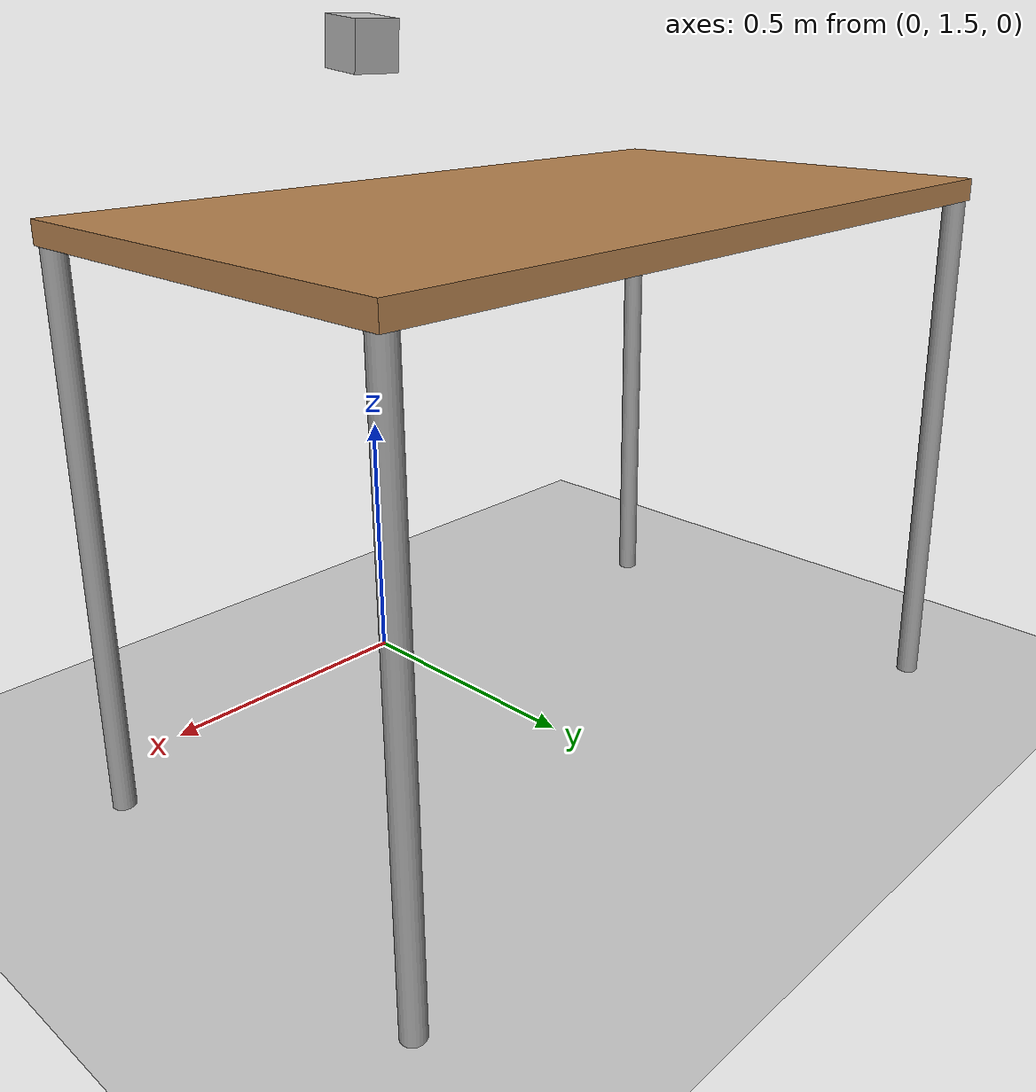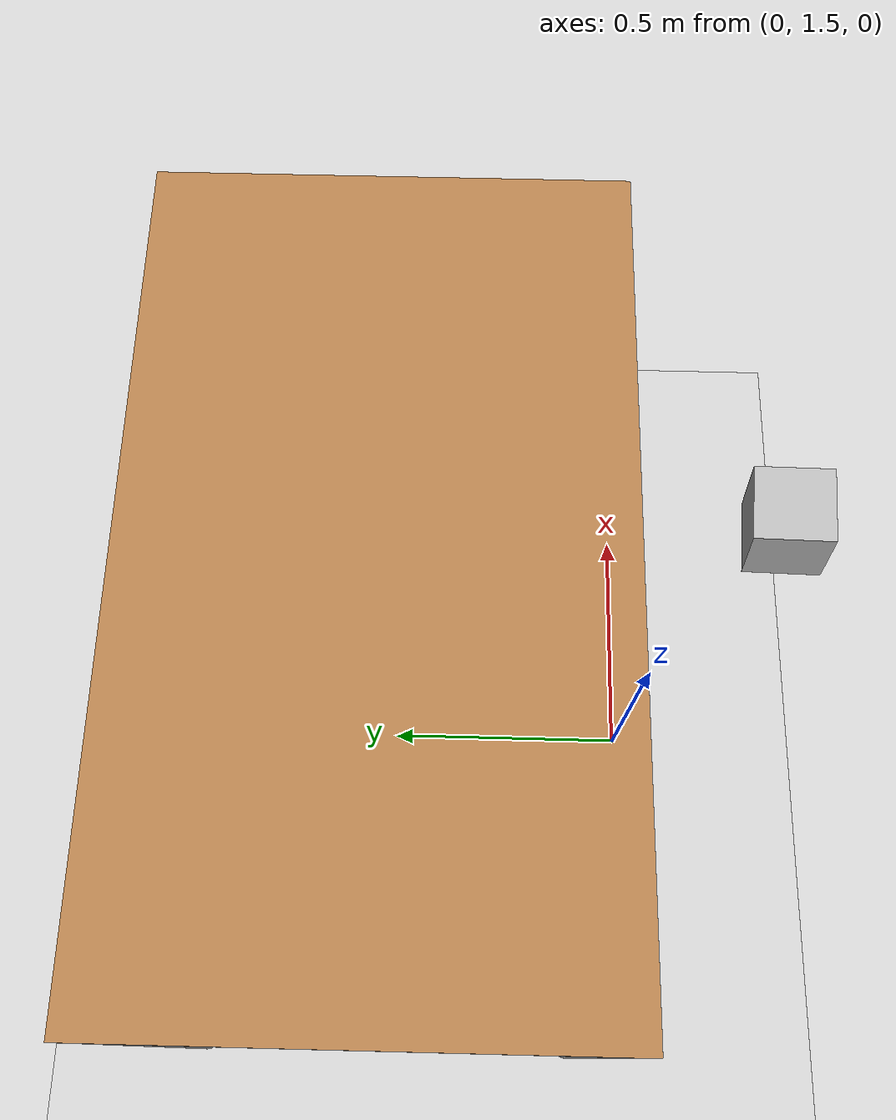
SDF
<sdf version="1.6">
 <world name="default">
  <light name="sun" type="directional">
   <pose>0 0 10 0 -0 0</pose>
   <diffuse>0.8 0.8 0.8 1</diffuse>
   <specular>0.1 0.1 0.1 1</specular>
   <attenuation>
    <range>1000</range>
    <constant>0.9</constant>
    <linear>0.01</linear>
    <quadratic>0.001</quadratic>
   </attenuation>
   <direction>-0.5 0.5 -1</direction>
  </light>
  <model name="ground_plane">
   <static>1</static>
   <link name="link">
    <collision name="collision">
     <geometry><plane><normal>0 0 1</normal><size>100 100</size></plane></geometry>
     <surface><friction><ode><mu>100</mu><mu2>50</mu2></ode></friction></surface>
    </collision>
    <visual name="visual">
     <cast_shadows>0</cast_shadows>
     <geometry><plane><normal>0 0 1</normal><size>100 100</size></plane></geometry>
     <material>
      <script><uri>file://media/materials/scripts/gazebo.material</uri><name>Gazebo/Grey</name></script>
     </material>
    </visual>
   </link>
  </model>
  <gravity>0 0 -9.8</gravity>
  <magnetic_field>6e-06 2.3e-05 -4.2e-05</magnetic_field>
  <atmosphere type="adiabatic"/>
  <physics name="default_physics" default="0" type="ode">
   <max_step_size>0.001</max_step_size>
   <real_time_factor>1</real_time_factor>
   <real_time_update_rate>1000</real_time_update_rate>
  </physics>
  <scene><ambient>0.4 0.4 0.4 1</ambient><background>0.7 0.7 0.7 1</background><shadows>1</shadows></scene>
  <spherical_coordinates>
   <surface_model>EARTH_WGS84</surface_model>
   <latitude_deg>0</latitude_deg>
   <longitude_deg>0</longitude_deg>
   <elevation>0</elevation>
   <heading_deg>0</heading_deg>
  </spherical_coordinates>
  <model name="table">
   <static>0</static>
   <link name="link">
    <collision name="surface">
     <pose>0 0 1 0 -0 0</pose>
     <geometry><box><size>1.5 0.8 0.03</size></box></geometry>
     <surface><friction><ode><mu>0.6</mu><mu2>0.6</mu2></ode></friction></surface>
    </collision>
    <visual name="visual1">
     <pose>0 0 1 0 -0 0</pose>
     <geometry><box><size>1.4 0.8 0.04</size></box></geometry>
     <material>
      <script><uri>file://media/materials/scripts/gazebo.material</uri><name>Gazebo/Wood</name></script>
     </material>
    </visual>
    <collision name="front_left_leg">
     <pose>0.68 0.38 0.5 0 -0 0</pose>
     <geometry><cylinder><radius>0.02</radius><length>1</length></cylinder></geometry>
    </collision>
    <visual name="front_left_leg">
     <pose>0.68 0.38 0.5 0 -0 0</pose>
     <geometry><cylinder><radius>0.02</radius><length>1</length></cylinder></geometry>
     <material>
      <script><uri>file://media/materials/scripts/gazebo.material</uri><name>Gazebo/Grey</name></script>
     </material>
    </visual>
    <collision name="front_right_leg">
     <pose>0.68 -0.38 0.5 0 -0 0</pose>
     <geometry><cylinder><radius>0.02</radius><length>1</length></cylinder></geometry>
    </collision>
    <visual name="front_right_leg">
     <pose>0.68 -0.38 0.5 0 -0 0</pose>
     <geometry><cylinder><radius>0.02</radius><length>1</length></cylinder></geometry>
     <material>
      <script><uri>file://media/materials/scripts/gazebo.material</uri><name>Gazebo/Grey</name></script>
     </material>
    </visual>
    <collision name="back_right_leg">
     <pose>-0.68 -0.38 0.5 0 -0 0</pose>
     <geometry><cylinder><radius>0.02</radius><length>1</length></cylinder></geometry>
    </collision>
    <visual name="back_right_leg">
     <pose>-0.68 -0.38 0.5 0 -0 0</pose>
     <geometry><cylinder><radius>0.02</radius><length>1</length></cylinder></geometry>
     <material>
      <script><uri>file://media/materials/scripts/gazebo.material</uri><name>Gazebo/Grey</name></script>
     </material>
    </visual>
    <collision name="back_left_leg">
     <pose>-0.68 0.38 0.5 0 -0 0</pose>
     <geometry><cylinder><radius>0.02</radius><length>1</length></cylinder></geometry>
    </collision>
    <visual name="back_left_leg">
     <pose>-0.68 0.38 0.5 0 -0 0</pose>
     <geometry><cylinder><radius>0.02</radius><length>1</length></cylinder></geometry>
     <material>
      <script><uri>file://media/materials/scripts/gazebo.material</uri><name>Gazebo/Grey</name></script>
     </material>
    </visual>
    <inertial>
     <inertia><ixx>1</ixx><ixy>0</ixy><ixz>0</ixz><iyy>1</iyy><iyz>0</iyz><izz>1</izz></inertia>
     <mass>1</mass>
    </inertial>
   </link>
   <pose>0.000136 1.99904 -0.00972 -3e-05 0.000407 3.8e-05</pose>
  </model>
  <model name="camera_0">
   <link name="link">
    <gravity>0</gravity>
    <pose>0.05 0.05 0.05 0 -0 0</pose>
    <inertial>
     <mass>0.1</mass>
     <inertia><ixx>1</ixx><ixy>0</ixy><ixz>0</ixz><iyy>1</iyy><iyz>0</iyz><izz>1</izz></inertia>
    </inertial>
    <visual name="visual"><geometry><box><size>0.1 0.1 0.1</size></box></geometry></visual>
    <sensor name="camera" type="camera">
     <camera name="camera">
      <horizontal_fov>1.047</horizontal_fov>
      <image><width>320</width><height>240</height></image>
      <clip><near>0.1</near><far>100</far></clip>
     </camera>
     <plugin name="camera_controller" filename="libgazebo_ros_camera.so">
      <always_on>1</always_on>
      <cameraName>camera</cameraName>
      <imageTopicName>image_raw</imageTopicName>
      <cameraInfoTopicName>camera_info</cameraInfoTopicName>
      <frameName>camera</frameName>
      <update_rate>0.0</update_rate>
      <visualize>1</visualize>
     </plugin>
    </sensor>
   </link>
   <pose>0 1.4 1.2 0 0.099999 1.5</pose>
  </model>
 </world>
</sdf>
